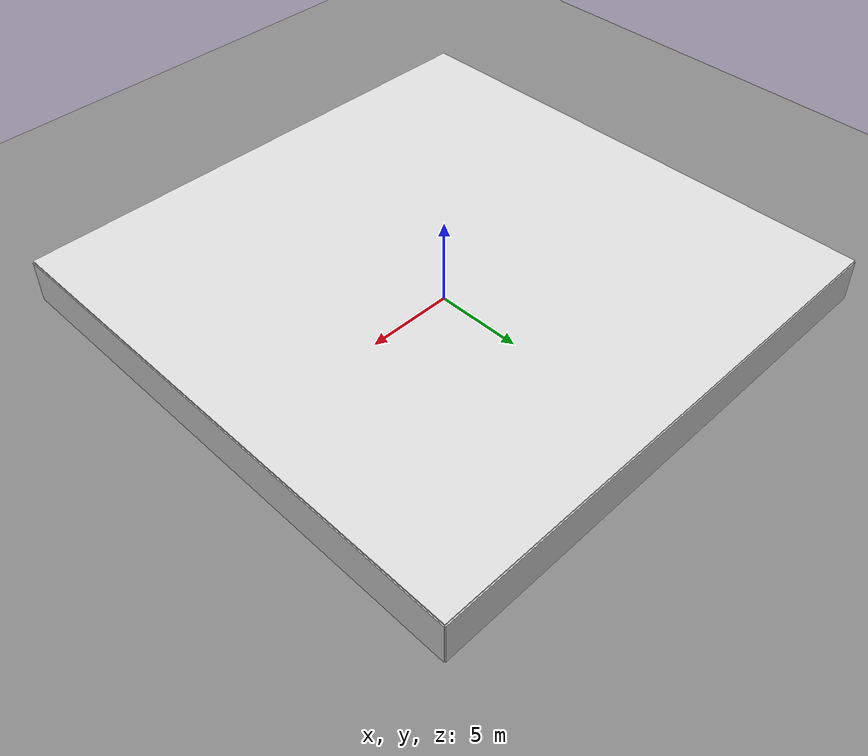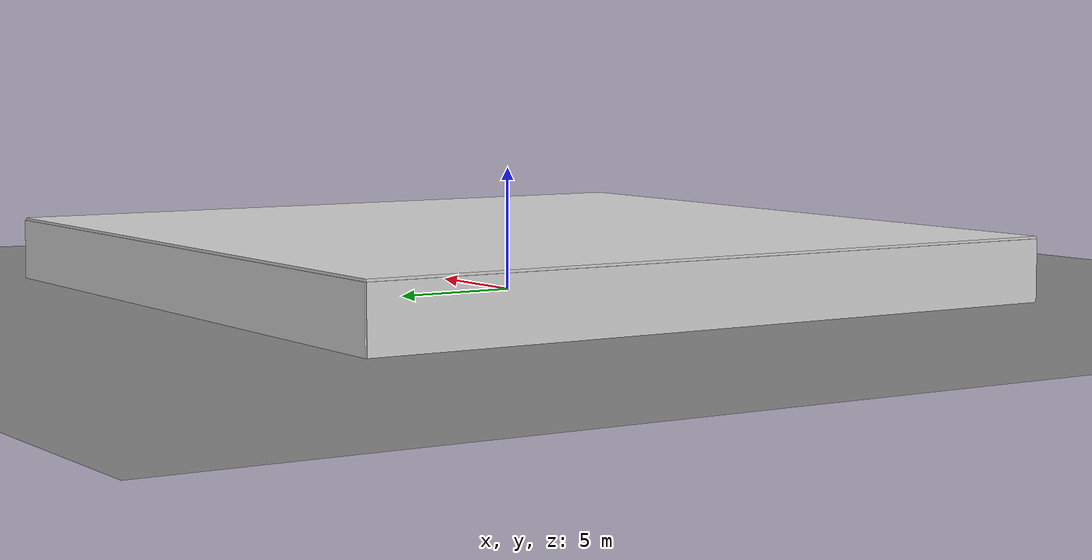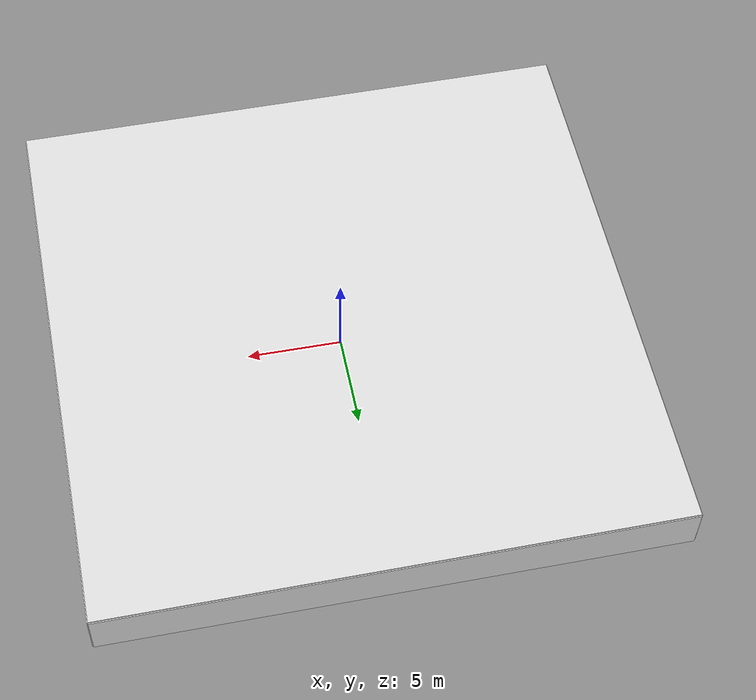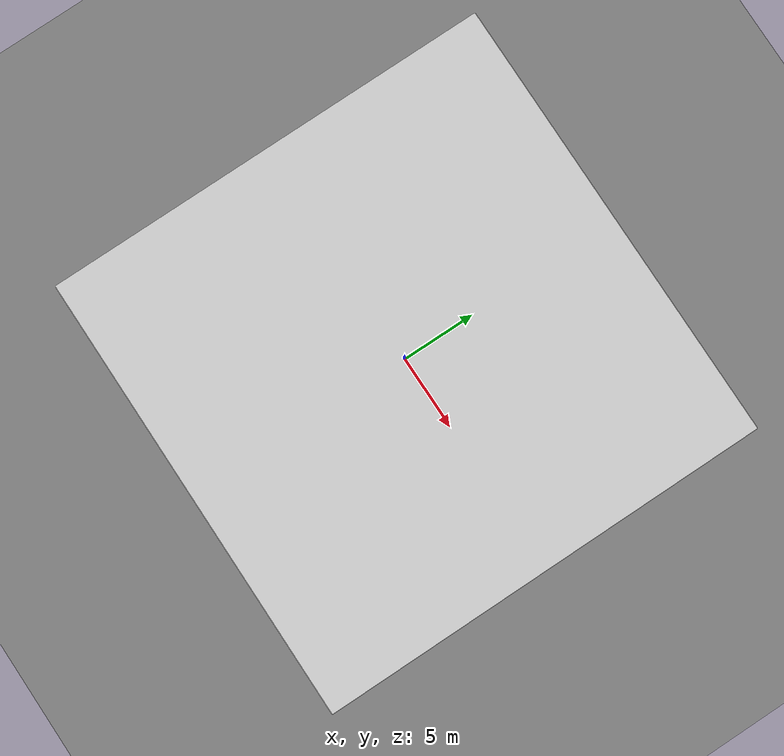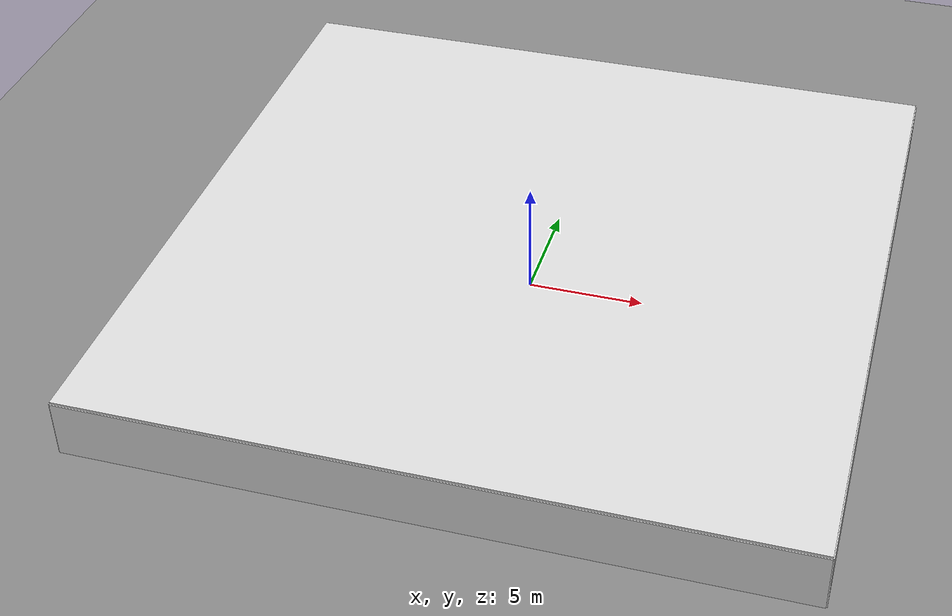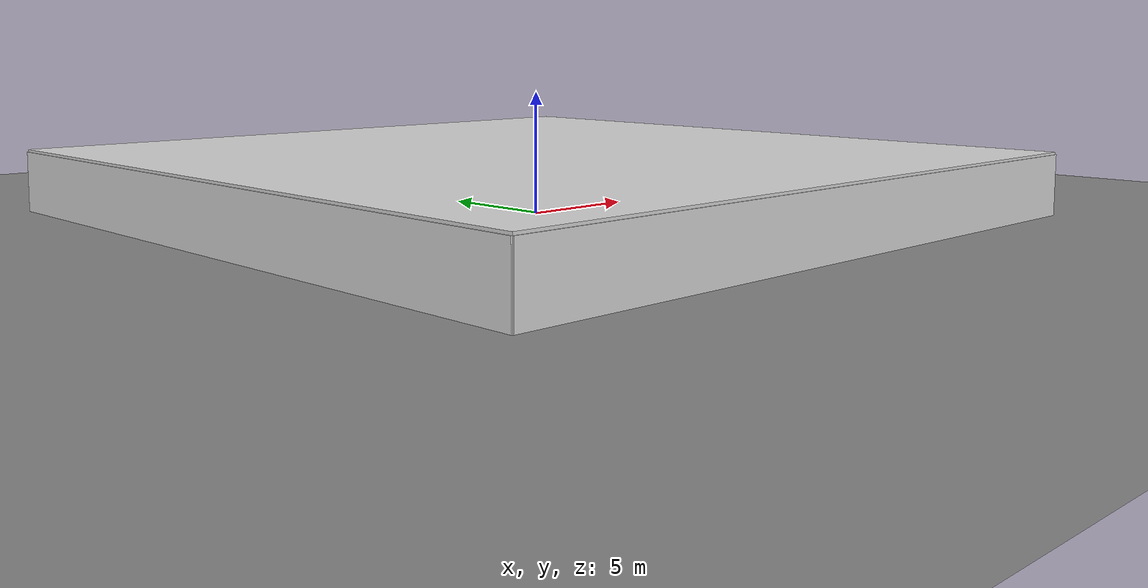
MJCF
<mujoco model="scene">

  <visual>
    <headlight diffuse="0.6 0.6 0.6" ambient="0.3 0.3 0.3" specular="0 0 0"/>
    <rgba haze="0.871 0.616 0.4 0.5"/>
    <global azimuth="-130" elevation="-20"/>
  </visual>

  <asset>
    <texture builtin="gradient" height="100" rgb1="0.9 0.9 0.9" rgb2="0.55 0.25 0.0" type="skybox" width="100"/>
    <include file="../../room/objects/materials.xml"/>
  </asset>

    <worldbody>
        <geom name="floor" friction="1 .1 .1" pos="0 0 0" size="0 0 0.125" type="plane" material="mat_floor" condim="3" conaffinity="1" contype="1" group="2"/>
        <light cutoff="1000" diffuse="1.5 1.5 1.5" dir="-0 0 -1.3" directional="true" exponent="10" pos="0 0 10.3" specular=".1 .1 .1" castshadow="false"/>

        <geom name="wall_negx" type="box" pos="-15.0 0.0 1.25" size="0.05 15.0 1.25" material="mat_wall"/>
        <geom name="wall_posx" type="box" pos=" 15.0 0.0 1.25" size="0.05 15.0 1.25" material="mat_wall"/>
        <geom name="wall_negy" type="box" pos="0.0 -15.0 1.25" size="15.0 0.05 1.25" material="mat_wall"/>
        <geom name="wall_posy" type="box" pos="0.0  15.0 1.25" size="15.0 0.05 1.25" material="mat_wall"/>

        <geom name="ceiling" type="box"
          pos="0 0 2.55"
          size="15.0 15.0 0.05"
          material="mat_wall"
          contype="1" conaffinity="1"
        />

        <!-- SCENARIO: table_06 -->
        <!-- TARGET_BODY_NAME: table_target -->
        <!-- LAYOUT: target=table, distance=medium, side=right, difficulty=hard -->

        <!-- TARGET: table -->
        <body name="table_target" pos="4.7429 -1.5627 0.0" euler="0 0 0.7098">
          <include file="../../room/objects/table.xml"/>
        </body>

        <!-- OBSTRUCTOR: trash_can -->
        <body name="trash_can_obstructor1" pos="2.5800 -0.6607 0.0" euler="0 0 0.5143">
          <include file="../../room/objects/trash_can.xml"/>
        </body>

        <!-- DISTRACTOR: couch -->
        <body name="couch_distractor1" pos="5.8343 -1.2932 0.0" euler="0 0 -1.0896">
          <include file="../../room/objects/couch.xml"/>
        </body>
    </worldbody>
</mujoco>

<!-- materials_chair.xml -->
<mujoco>
  <texture name="tex_wood_chair" type="2d" file="oak_veneer_01_diff_2k.png"/>
  <material name="mat_wood_chair"
            texture="tex_wood_chair"
            texrepeat="1.2 1.2"
            texuniform="true"
            rgba="1 1 1 1"
            specular="0.22"
            shininess="0.35"
            reflectance="0.04"/>
</mujoco>

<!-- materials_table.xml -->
<mujoco>
  <texture name="tex_wood_table" type="2d" file="wood_table_001_diff_2k.png"/>
  <material name="mat_wood_table"
            texture="tex_wood_table"
            texrepeat="1.2 1.2"
            texuniform="true"
            rgba="1 1 1 1"
            specular="0.22"
            shininess="0.35"
            reflectance="0.04"/>
</mujoco>

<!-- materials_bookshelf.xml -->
<mujoco>
  <texture name="tex_bookshelf_wood"
           type="2d"
           file="oak_veneer_01_diff_2k.png"/>

  <material name="mat_wood_bookshelf"
            texture="tex_bookshelf_wood"
            texrepeat="1.2 1.2"
            texuniform="true"
            rgba="1 1 1 1"
            specular="0.22"
            shininess="0.35"
            reflectance="0.04"/>
</mujoco>

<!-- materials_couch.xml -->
<mujoco>
  <texture name="tex_wood_couch" type="2d" file="wood_table_001_diff_2k.png"/>
  <material name="mat_wood_couch"
            texture="tex_wood_couch"
            texrepeat="1.2 1.2"
            texuniform="true"
            rgba="1 1 1 1"
            specular="0.22"
            shininess="0.35"
            reflectance="0.04"/>

  <texture name="tex_fabric" type="2d" file="rough_linen_diff_2k.png"/>
  <material name="mat_fabric"
            texture="tex_fabric"
            texrepeat="1.2 1.2"
            texuniform="true"
            rgba="1 1 1 1"
            specular="0.10"
            shininess="0.08"
            reflectance="0.01"/>
</mujoco>

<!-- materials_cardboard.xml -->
<mujoco>
  <texture name="tex_cardboard" type="2d" file="cardboard.png"/>
  <material name="mat_cardboard"
            texture="tex_cardboard"
            texrepeat="1.2 1.2"
            texuniform="true"
            rgba="1 1 1 1"
            specular="0.10"
            shininess="0.08"
            reflectance="0.01"/>
</mujoco>

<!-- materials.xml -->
<mujoco>
  <material name="mat_wall" rgba="0.85 0.85 0.85 1"/>
  <include file="materials_chair.xml"/>

  <include file="materials_table.xml"/>

  <include file="materials_bookshelf.xml"/>
  <material name="mat_book_red" rgba="0.70 0.18 0.16 1"/>
  <material name="mat_book_blue" rgba="0.16 0.31 0.62 1"/>
  <material name="mat_book_green" rgba="0.22 0.45 0.24 1"/>
  <material name="mat_book_yellow" rgba="0.78 0.66 0.22 1"/>
  <material name="mat_book_dark" rgba="0.20 0.18 0.17 1"/>

  <include file="materials_couch.xml"/>
  <include file="materials_cardboard.xml"/>

  <texture name="tex_metal" type="2d" file="metal.png"/>
  <material name="mat_metal" texture="tex_metal" texrepeat="2 2" reflectance="0.3"/>
  <material name="mat_trash_can_dark_green"
            texture="tex_metal"
            texrepeat="2 2"
            rgba="0.10 0.18 0.12 1"
            specular="0.18"
            shininess="0.20"
            reflectance="0.02"/>

  <texture name="tex_floor" type="2d" builtin="checker" width="512" height="512"
           rgb1="0.55 0.55 0.55" rgb2="0.50 0.50 0.50"/>
  <material name="mat_floor" texture="tex_floor" texrepeat="4 4" reflectance="0.00"/>

</mujoco>

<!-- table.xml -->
<mujoco>
  <body>
    <!-- tabletop -->
    <geom name="table_top" type="box"
          pos="0 0 0.595" size="0.62 0.42 0.035"
          material="mat_wood_table"/>
    <geom name="table_helper_front" type="box"
          pos="0 0.295 0.275" size="0.450 0.012 0.275"
          rgba="0 0 0 0"/>
    <geom name="table_helper_back" type="box"
          pos="0 -0.295 0.275" size="0.450 0.012 0.275"
          rgba="0 0 0 0"/>
    <geom name="table_helper_left" type="box"
          pos="-0.515 0 0.275" size="0.012 0.245 0.275"
          rgba="0 0 0 0"/>
    <geom name="table_helper_right" type="box"
          pos="0.515 0 0.275" size="0.012 0.245 0.275"
          rgba="0 0 0 0"/>
    <geom name="table_top_bevel_front" type="box"
          pos="0 0.395 0.555" size="0.58 0.012 0.012"
          material="mat_wood_table"/>
    <geom name="table_top_bevel_back" type="box"
          pos="0 -0.395 0.555" size="0.58 0.012 0.012"
          material="mat_wood_table"/>
    <geom name="table_top_bevel_left" type="box"
          pos="-0.595 0 0.555" size="0.012 0.36 0.012"
          material="mat_wood_table"/>
    <geom name="table_top_bevel_right" type="box"
          pos="0.595 0 0.555" size="0.012 0.36 0.012"
          material="mat_wood_table"/>

    <!-- apron -->
    <geom name="table_apron_front" type="box"
          pos="0 0.335 0.515" size="0.53 0.025 0.045"
          material="mat_wood_table"/>
    <geom name="table_apron_back" type="box"
          pos="0 -0.335 0.515" size="0.53 0.025 0.045"
          material="mat_wood_table"/>
    <geom name="table_apron_left" type="box"
          pos="-0.535 0 0.515" size="0.025 0.29 0.045"
          material="mat_wood_table"/>
    <geom name="table_apron_right" type="box"
          pos="0.535 0 0.515" size="0.025 0.29 0.045"
          material="mat_wood_table"/>

    <!-- legs -->
    <geom name="table_leg_fl" type="box"
          pos="0.515 0.295 0.255" size="0.032 0.032 0.255"
          material="mat_wood_table"/>
    <geom name="table_leg_fr" type="box"
          pos="0.515 -0.295 0.255" size="0.032 0.032 0.255"
          material="mat_wood_table"/>
    <geom name="table_leg_rl" type="box"
          pos="-0.515 0.295 0.255" size="0.032 0.032 0.255"
          material="mat_wood_table"/>
    <geom name="table_leg_rr" type="box"
          pos="-0.515 -0.295 0.255" size="0.032 0.032 0.255"
          material="mat_wood_table"/>

    <!-- lower stretchers -->
    <geom name="table_stretcher_left" type="box"
          pos="-0.515 0 0.105" size="0.015 0.295 0.015"
          material="mat_wood_table"/>
    <geom name="table_stretcher_right" type="box"
          pos="0.515 0 0.105" size="0.015 0.295 0.015"
          material="mat_wood_table"/>
    <geom name="table_stretcher_front" type="box"
          pos="0 0.295 0.120" size="0.515 0.015 0.015"
          material="mat_wood_table"/>
    <geom name="table_stretcher_back" type="box"
          pos="0 -0.295 0.120" size="0.515 0.015 0.015"
          material="mat_wood_table"/>

  </body>
</mujoco>

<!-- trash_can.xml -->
<mujoco>
  <body>
    <!-- bottom foot ring -->
    <geom name="trash_can_base_ring" type="cylinder"
          pos="0 0 0.020" size="0.115 0.020"
          material="mat_trash_can_dark_green"/>

    <!-- main body -->
    <geom name="trash_can_body" type="cylinder"
          pos="0 0 0.155" size="0.138 0.135"
          material="mat_trash_can_dark_green"/>

    <!-- upper collar -->
    <geom name="trash_can_upper_band" type="cylinder"
          pos="0 0 0.265" size="0.152 0.016"
          material="mat_trash_can_dark_green"/>

    <!-- rolled top rim -->
    <geom name="trash_can_rim" type="cylinder"
          pos="0 0 0.292" size="0.168 0.010"
          material="mat_trash_can_dark_green"/>

    <!-- inset inner lip for a more finished opening -->
    <geom name="trash_can_inner_lip" type="cylinder"
          pos="0 0 0.276" size="0.126 0.008"
          material="mat_trash_can_dark_green"/>
  </body>
</mujoco>

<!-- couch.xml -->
<mujoco>
<body>
  <!-- legs -->
  <geom name="couch_leg_fl" type="box"
        pos="-0.50 0.26 0.04" size="0.03 0.03 0.04"
        material="mat_wood_couch"/>
  <geom name="couch_leg_fr" type="box"
        pos="0.50 0.26 0.04" size="0.03 0.03 0.04"
        material="mat_wood_couch"/>
  <geom name="couch_leg_rl" type="box"
        pos="-0.50 -0.26 0.04" size="0.03 0.03 0.04"
        material="mat_wood_couch"/>
  <geom name="couch_leg_rr" type="box"
        pos="0.50 -0.26 0.04" size="0.03 0.03 0.04"
        material="mat_wood_couch"/>

  <!-- soft seat base -->
  <geom name="couch_seat_base" type="box"
        pos="0 0 0.16" size="0.54 0.27 0.08"
        material="mat_fabric"/>
  <geom name="couch_seat_front_roll" type="capsule"
        fromto="-0.48 0.24 0.195 0.48 0.24 0.195"
        size="0.055"
        material="mat_fabric"/>

  <!-- seat cushions -->
  <geom name="couch_seat_left" type="ellipsoid"
        pos="-0.22 0.02 0.255" size="0.17 0.21 0.065"
        material="mat_fabric"/>
  <geom name="couch_seat_mid" type="ellipsoid"
        pos="0.00 0.02 0.255" size="0.15 0.21 0.065"
        material="mat_fabric"/>
  <geom name="couch_seat_right" type="ellipsoid"
        pos="0.22 0.02 0.255" size="0.17 0.21 0.065"
        material="mat_fabric"/>

  <!-- back cushions -->
  <geom name="couch_back_core" type="box"
        pos="0 -0.160 0.37" size="0.53 0.105 0.16"
        material="mat_fabric"/>
  <geom name="couch_back_top_roll" type="capsule"
        fromto="-0.48 -0.145 0.52 0.48 -0.145 0.52"
        size="0.060"
        material="mat_fabric"/>
  <geom name="couch_back_left" type="ellipsoid"
        pos="-0.22 -0.095 0.39" size="0.16 0.100 0.15"
        material="mat_fabric"/>
  <geom name="couch_back_mid" type="ellipsoid"
        pos="0.00 -0.095 0.39" size="0.14 0.100 0.15"
        material="mat_fabric"/>
  <geom name="couch_back_right" type="ellipsoid"
        pos="0.22 -0.095 0.39" size="0.16 0.100 0.15"
        material="mat_fabric"/>

  <!-- softer armrests -->
  <geom name="couch_arm_left_core" type="box"
        pos="-0.49 0.02 0.34" size="0.055 0.24 0.15"
        material="mat_fabric"/>
  <geom name="couch_arm_right_core" type="box"
        pos="0.49 0.02 0.34" size="0.055 0.24 0.15"
        material="mat_fabric"/>
  <geom name="couch_arm_left_top" type="capsule"
        fromto="-0.49 -0.19 0.49 -0.49 0.18 0.49"
        size="0.050"
        material="mat_fabric"/>
  <geom name="couch_arm_right_top" type="capsule"
        fromto="0.49 -0.19 0.49 0.49 0.18 0.49"
        size="0.050"
        material="mat_fabric"/>
</body>
</mujoco>
